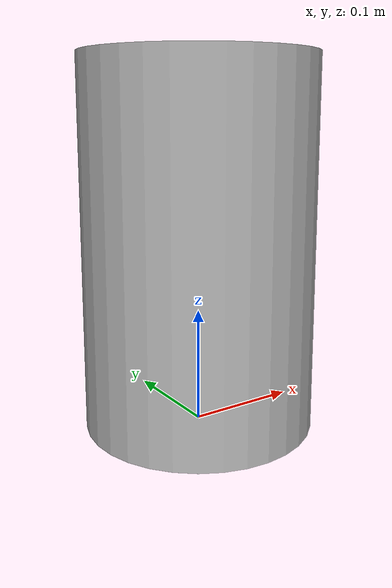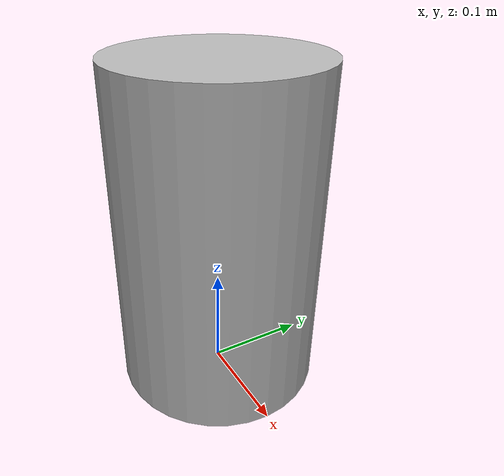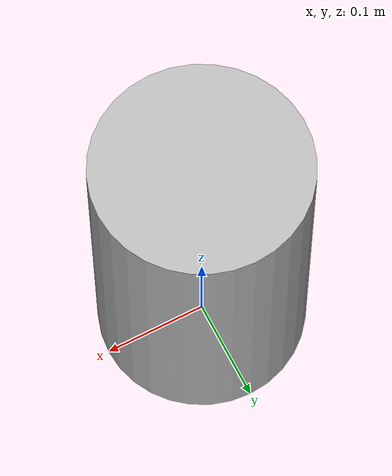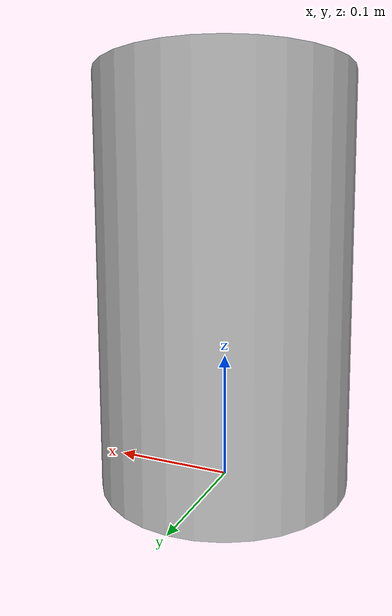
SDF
<?xml version="1.0" ?>
<sdf version="1.5">
  <model name="column_10">
    <static>false</static>
    <link name="link">
      <collision name="collision">
        <geometry>
          <box>
            <size>0.5 0.5 0.4</size>
          </box>
        </geometry>
        <surface>
        </surface>
      </collision>
      <visual name="visual">
        <geometry>
          <mesh>
            <scale>0.5 0.5 0.4</scale>
            <uri>model://ICT_models/column_10/meshes/model.dae</uri>
          </mesh>

        </geometry>
        <material>
          <script>

            <uri>model://ICT_models/column_10/materials/scripts</uri>
            <uri>model://ICT_models/column_10/materials/textures</uri>
            <name>model_material10/Diffuse</name>

          </script>
        </material>
      </visual>
    </link>
  </model>
</sdf>
